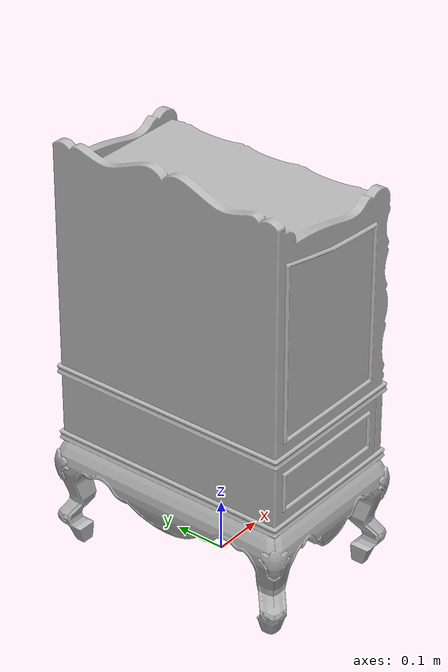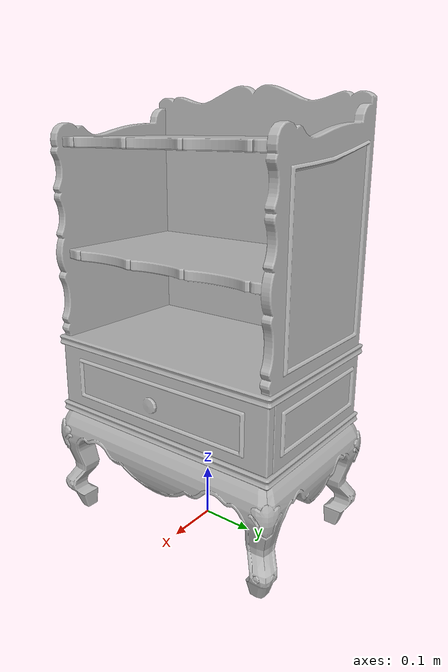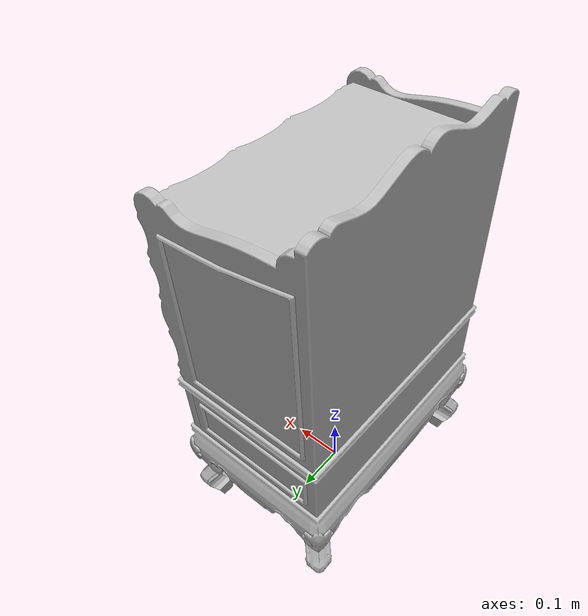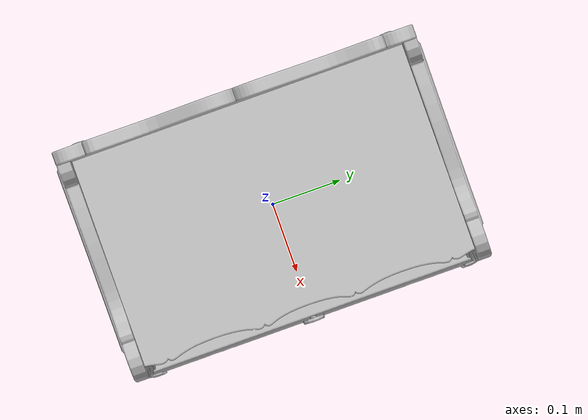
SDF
<?xml version='1.0'?>
<sdf version='1.4'>
  <model name='s__1683'>
    <pose>0 0 0 0 0 0</pose>
    <static>true</static>
    <link name='link'>
      <collision name='collision'>
        <pose>0 0 0 0 0 0</pose>
        <geometry>
          <box>
            <size>0.34 0.51 2</size>
          </box>
        </geometry>
      </collision>
      <visual name='visual'>
        <pose>0 0 0 0 0 0</pose>
        <geometry>
          <mesh><uri>model://s__1683/s__1683.dae</uri></mesh>
        </geometry>
      </visual>
    </link>
  </model>
</sdf>
